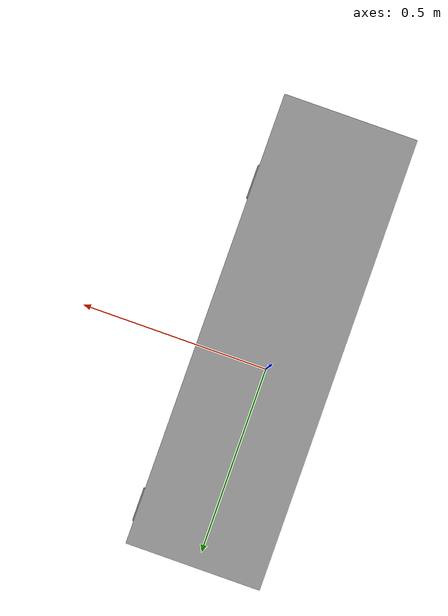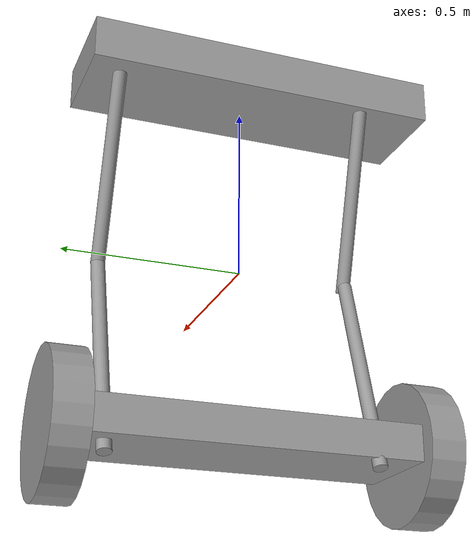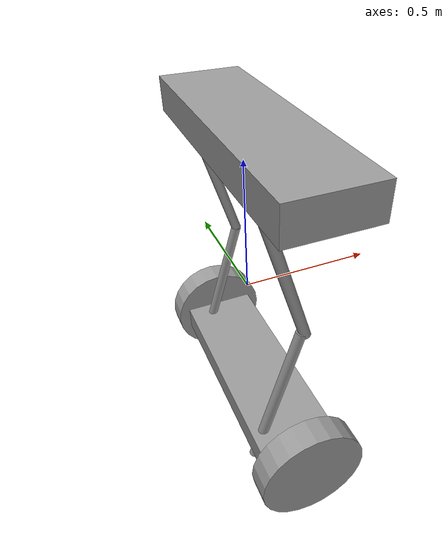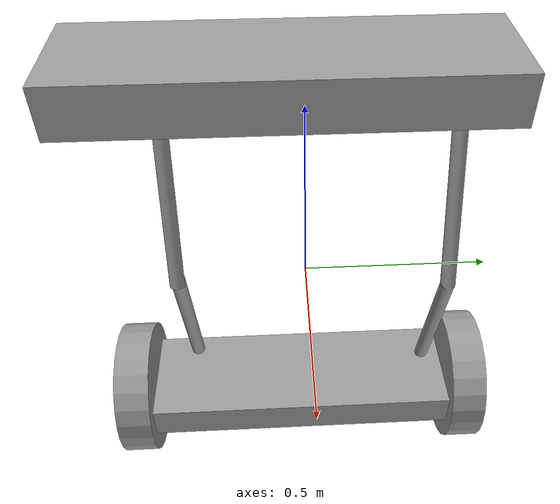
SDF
<?xml version='1.0'?>
<sdf version='1.6'>
  <model name='HumanoidRobot'>
    <static>true</static>
    <link name='link_1'>
      <inertial>
        <mass>1.23312</mass>
        <inertia>
          <ixx>0.106781</ixx>
          <ixy>0</ixy>
          <ixz>0</ixz>
          <iyy>0.0107742</iyy>
          <iyz>0</iyz>
          <izz>0.114503</izz>
        </inertia>
        <pose>0 0 0 0 -0 0</pose>
      </inertial>
      <pose>0.01979 -0.040473 0.587742 0 -0 0</pose>
      <visual name='visual'>
        <pose frame=''>0 0 0 0 -0 0</pose>
        <geometry>
          <box>
            <size>0.3 1.01207 0.121852</size>
          </box>
        </geometry>
        <material>
          <lighting>1</lighting>
          <script>
            <uri>file://media/materials/scripts/gazebo.material</uri>
            <name>Gazebo/Grey</name>
          </script>
          <shader type='pixel'>
            <normal_map>__default__</normal_map>
          </shader>
          <ambient>0.3 0.3 0.3 1</ambient>
          <diffuse>0.7 0.7 0.7 1</diffuse>
          <specular>0.01 0.01 0.01 1</specular>
          <emissive>0 0 0 1</emissive>
        </material>
        <transparency>0</transparency>
        <cast_shadows>1</cast_shadows>
      </visual>
      <collision name='collision'>
        <laser_retro>0</laser_retro>
        <max_contacts>10</max_contacts>
        <pose frame=''>0 0 0 0 -0 0</pose>
        <geometry>
          <box>
            <size>0.3 1.01207 0.121852</size>
          </box>
        </geometry>
        <surface>
          <friction>
            <ode>
              <mu>1</mu>
              <mu2>1</mu2>
              <fdir1>0 0 0</fdir1>
              <slip1>0</slip1>
              <slip2>0</slip2>
            </ode>
            <torsional>
              <coefficient>1</coefficient>
              <patch_radius>0</patch_radius>
              <surface_radius>0</surface_radius>
              <use_patch_radius>1</use_patch_radius>
              <ode>
                <slip>0</slip>
              </ode>
            </torsional>
          </friction>
          <bounce>
            <restitution_coefficient>0</restitution_coefficient>
            <threshold>1e+06</threshold>
          </bounce>
          <contact>
            <collide_without_contact>0</collide_without_contact>
            <collide_without_contact_bitmask>1</collide_without_contact_bitmask>
            <collide_bitmask>1</collide_bitmask>
            <ode>
              <soft_cfm>0</soft_cfm>
              <soft_erp>0.2</soft_erp>
              <kp>1e+13</kp>
              <kd>1</kd>
              <max_vel>0.01</max_vel>
              <min_depth>0</min_depth>
            </ode>
            <bullet>
              <split_impulse>1</split_impulse>
              <split_impulse_penetration_threshold>-0.01</split_impulse_penetration_threshold>
              <soft_cfm>0</soft_cfm>
              <soft_erp>0.2</soft_erp>
              <kp>1e+13</kp>
              <kd>1</kd>
            </bullet>
          </contact>
        </surface>
      </collision>
    </link>
    <link name='link_2'>
      <inertial>
        <mass>0.00130479</mass>
        <inertia>
          <ixx>4.197e-05</ixx>
          <ixy>0</ixy>
          <ixz>0</ixz>
          <iyy>4.197e-05</iyy>
          <iyz>0</iyz>
          <izz>3.5e-07</izz>
        </inertia>
        <pose frame=''>0 0 0 0 -0 0</pose>
      </inertial>
      <pose frame=''>-0.022447 -0.345824 0.300772 0 -0.3 0</pose>
      <gravity>1</gravity>
      <self_collide>0</self_collide>
      <kinematic>0</kinematic>
      <enable_wind>0</enable_wind>
      <visual name='visual'>
        <pose frame=''>0 0 0 0 -0 0</pose>
        <geometry>
          <cylinder>
            <radius>0.02</radius>
            <length>0.6</length>
          </cylinder>
        </geometry>
        <material>
          <lighting>1</lighting>
          <script>
            <uri>file://media/materials/scripts/gazebo.material</uri>
            <name>Gazebo/Grey</name>
          </script>
          <shader type='pixel'>
            <normal_map>__default__</normal_map>
          </shader>
          <ambient>0.3 0.3 0.3 1</ambient>
          <diffuse>0.7 0.7 0.7 1</diffuse>
          <specular>0.01 0.01 0.01 1</specular>
          <emissive>0 0 0 1</emissive>
        </material>
        <transparency>0</transparency>
        <cast_shadows>1</cast_shadows>
      </visual>
      <collision name='collision'>
        <laser_retro>0</laser_retro>
        <max_contacts>10</max_contacts>
        <pose frame=''>0 0 0 0 -0 0</pose>
        <geometry>
          <cylinder>
            <radius>0.02</radius>
            <length>0.6</length>
          </cylinder>
        </geometry>
        <surface>
          <friction>
            <ode>
              <mu>1</mu>
              <mu2>1</mu2>
              <fdir1>0 0 0</fdir1>
              <slip1>0</slip1>
              <slip2>0</slip2>
            </ode>
            <torsional>
              <coefficient>1</coefficient>
              <patch_radius>0</patch_radius>
              <surface_radius>0</surface_radius>
              <use_patch_radius>1</use_patch_radius>
              <ode>
                <slip>0</slip>
              </ode>
            </torsional>
          </friction>
          <bounce>
            <restitution_coefficient>0</restitution_coefficient>
            <threshold>1e+06</threshold>
          </bounce>
          <contact>
            <collide_without_contact>0</collide_without_contact>
            <collide_without_contact_bitmask>1</collide_without_contact_bitmask>
            <collide_bitmask>1</collide_bitmask>
            <ode>
              <soft_cfm>0</soft_cfm>
              <soft_erp>0.2</soft_erp>
              <kp>1e+13</kp>
              <kd>1</kd>
              <max_vel>0.01</max_vel>
              <min_depth>0</min_depth>
            </ode>
            <bullet>
              <split_impulse>1</split_impulse>
              <split_impulse_penetration_threshold>-0.01</split_impulse_penetration_threshold>
              <soft_cfm>0</soft_cfm>
              <soft_erp>0.2</soft_erp>
              <kp>1e+13</kp>
              <kd>1</kd>
            </bullet>
          </contact>
        </surface>
      </collision>
    </link>
    <link name='link_2_clone'>
      <inertial>
        <mass>0.00130479</mass>
        <inertia>
          <ixx>4.197e-05</ixx>
          <ixy>0</ixy>
          <ixz>0</ixz>
          <iyy>4.197e-05</iyy>
          <iyz>0</iyz>
          <izz>3.5e-07</izz>
        </inertia>
        <pose frame=''>0 0 0 0 -0 0</pose>
      </inertial>
      <pose frame=''>0.013434 0.375718 0.300772 0 -0.3 0</pose>
      <gravity>1</gravity>
      <self_collide>0</self_collide>
      <kinematic>0</kinematic>
      <enable_wind>0</enable_wind>
      <visual name='visual'>
        <pose frame=''>0 0 0 0 -0 0</pose>
        <geometry>
          <cylinder>
            <radius>0.02</radius>
            <length>0.6</length>
          </cylinder>
        </geometry>
        <material>
          <lighting>1</lighting>
          <script>
            <uri>file://media/materials/scripts/gazebo.material</uri>
            <name>Gazebo/Grey</name>
          </script>
          <shader type='pixel'>
            <normal_map>__default__</normal_map>
          </shader>
          <ambient>0.3 0.3 0.3 1</ambient>
          <diffuse>0.7 0.7 0.7 1</diffuse>
          <specular>0.01 0.01 0.01 1</specular>
          <emissive>0 0 0 1</emissive>
        </material>
        <transparency>0</transparency>
        <cast_shadows>1</cast_shadows>
      </visual>
      <collision name='collision'>
        <laser_retro>0</laser_retro>
        <max_contacts>10</max_contacts>
        <pose frame=''>0 0 0 0 -0 0</pose>
        <geometry>
          <cylinder>
            <radius>0.02</radius>
            <length>0.6</length>
          </cylinder>
        </geometry>
        <surface>
          <friction>
            <ode>
              <mu>1</mu>
              <mu2>1</mu2>
              <fdir1>0 0 0</fdir1>
              <slip1>0</slip1>
              <slip2>0</slip2>
            </ode>
            <torsional>
              <coefficient>1</coefficient>
              <patch_radius>0</patch_radius>
              <surface_radius>0</surface_radius>
              <use_patch_radius>1</use_patch_radius>
              <ode>
                <slip>0</slip>
              </ode>
            </torsional>
          </friction>
          <bounce>
            <restitution_coefficient>0</restitution_coefficient>
            <threshold>1e+06</threshold>
          </bounce>
          <contact>
            <collide_without_contact>0</collide_without_contact>
            <collide_without_contact_bitmask>1</collide_without_contact_bitmask>
            <collide_bitmask>1</collide_bitmask>
            <ode>
              <soft_cfm>0</soft_cfm>
              <soft_erp>0.2</soft_erp>
              <kp>1e+13</kp>
              <kd>1</kd>
              <max_vel>0.01</max_vel>
              <min_depth>0</min_depth>
            </ode>
            <bullet>
              <split_impulse>1</split_impulse>
              <split_impulse_penetration_threshold>-0.01</split_impulse_penetration_threshold>
              <soft_cfm>0</soft_cfm>
              <soft_erp>0.2</soft_erp>
              <kp>1e+13</kp>
              <kd>1</kd>
            </bullet>
          </contact>
        </surface>
      </collision>
    </link>
    <link name='link_2_clone_0'>
      <inertial>
        <mass>0.00130475</mass>
        <inertia>
          <ixx>3.927e-05</ixx>
          <ixy>0</ixy>
          <ixz>0</ixz>
          <iyy>3.927e-05</iyy>
          <iyz>0</iyz>
          <izz>2.6e-07</izz>
        </inertia>
        <pose frame=''>0 0 0 0 -0 0</pose>
      </inertial>
      <pose frame=''>-0.037314 -0.345824 -0.257269 0 0.3 0</pose>
      <gravity>1</gravity>
      <self_collide>0</self_collide>
      <kinematic>0</kinematic>
      <enable_wind>0</enable_wind>
      <visual name='visual'>
        <pose frame=''>0 0 0 0 -0 0</pose>
        <geometry>
          <cylinder>
            <radius>0.02</radius>
            <length>0.6</length>
          </cylinder>
        </geometry>
        <material>
          <lighting>1</lighting>
          <script>
            <uri>file://media/materials/scripts/gazebo.material</uri>
            <name>Gazebo/Grey</name>
          </script>
          <shader type='pixel'>
            <normal_map>__default__</normal_map>
          </shader>
          <ambient>0.3 0.3 0.3 1</ambient>
          <diffuse>0.7 0.7 0.7 1</diffuse>
          <specular>0.01 0.01 0.01 1</specular>
          <emissive>0 0 0 1</emissive>
        </material>
        <transparency>0</transparency>
        <cast_shadows>1</cast_shadows>
      </visual>
      <collision name='collision'>
        <laser_retro>0</laser_retro>
        <max_contacts>10</max_contacts>
        <pose frame=''>0 0 0 0 -0 0</pose>
        <geometry>
          <cylinder>
            <radius>0.02</radius>
            <length>0.6</length>
          </cylinder>
        </geometry>
        <surface>
          <friction>
            <ode>
              <mu>1</mu>
              <mu2>1</mu2>
              <fdir1>0 0 0</fdir1>
              <slip1>0</slip1>
              <slip2>0</slip2>
            </ode>
            <torsional>
              <coefficient>1</coefficient>
              <patch_radius>0</patch_radius>
              <surface_radius>0</surface_radius>
              <use_patch_radius>1</use_patch_radius>
              <ode>
                <slip>0</slip>
              </ode>
            </torsional>
          </friction>
          <bounce>
            <restitution_coefficient>0</restitution_coefficient>
            <threshold>1e+06</threshold>
          </bounce>
          <contact>
            <collide_without_contact>0</collide_without_contact>
            <collide_without_contact_bitmask>1</collide_without_contact_bitmask>
            <collide_bitmask>1</collide_bitmask>
            <ode>
              <soft_cfm>0</soft_cfm>
              <soft_erp>0.2</soft_erp>
              <kp>1e+13</kp>
              <kd>1</kd>
              <max_vel>0.01</max_vel>
              <min_depth>0</min_depth>
            </ode>
            <bullet>
              <split_impulse>1</split_impulse>
              <split_impulse_penetration_threshold>-0.01</split_impulse_penetration_threshold>
              <soft_cfm>0</soft_cfm>
              <soft_erp>0.2</soft_erp>
              <kp>1e+13</kp>
              <kd>1</kd>
            </bullet>
          </contact>
        </surface>
      </collision>
    </link>
    <link name='link_2_clone_clone'>
      <inertial>
        <mass>0.00130479</mass>
        <inertia>
          <ixx>4.197e-05</ixx>
          <ixy>0</ixy>
          <ixz>0</ixz>
          <iyy>4.197e-05</iyy>
          <iyz>0</iyz>
          <izz>3.5e-07</izz>
        </inertia>
        <pose frame=''>0 0 0 0 -0 0</pose>
      </inertial>
      <pose frame=''>0.013434 0.375718 -0.263839 0 0.3 0</pose>
      <gravity>1</gravity>
      <self_collide>0</self_collide>
      <kinematic>0</kinematic>
      <enable_wind>0</enable_wind>
      <visual name='visual'>
        <pose frame=''>0 0 0 0 -0 0</pose>
        <geometry>
          <cylinder>
            <radius>0.02</radius>
            <length>0.6</length>
          </cylinder>
        </geometry>
        <material>
          <lighting>1</lighting>
          <script>
            <uri>file://media/materials/scripts/gazebo.material</uri>
            <name>Gazebo/Grey</name>
          </script>
          <shader type='pixel'>
            <normal_map>__default__</normal_map>
          </shader>
          <ambient>0.3 0.3 0.3 1</ambient>
          <diffuse>0.7 0.7 0.7 1</diffuse>
          <specular>0.01 0.01 0.01 1</specular>
          <emissive>0 0 0 1</emissive>
        </material>
        <transparency>0</transparency>
        <cast_shadows>1</cast_shadows>
      </visual>
      <collision name='collision'>
        <laser_retro>0</laser_retro>
        <max_contacts>10</max_contacts>
        <pose frame=''>0 0 0 0 -0 0</pose>
        <geometry>
          <cylinder>
            <radius>0.02</radius>
            <length>0.6</length>
          </cylinder>
        </geometry>
        <surface>
          <friction>
            <ode>
              <mu>1</mu>
              <mu2>1</mu2>
              <fdir1>0 0 0</fdir1>
              <slip1>0</slip1>
              <slip2>0</slip2>
            </ode>
            <torsional>
              <coefficient>1</coefficient>
              <patch_radius>0</patch_radius>
              <surface_radius>0</surface_radius>
              <use_patch_radius>1</use_patch_radius>
              <ode>
                <slip>0</slip>
              </ode>
            </torsional>
          </friction>
          <bounce>
            <restitution_coefficient>0</restitution_coefficient>
            <threshold>1e+06</threshold>
          </bounce>
          <contact>
            <collide_without_contact>0</collide_without_contact>
            <collide_without_contact_bitmask>1</collide_without_contact_bitmask>
            <collide_bitmask>1</collide_bitmask>
            <ode>
              <soft_cfm>0</soft_cfm>
              <soft_erp>0.2</soft_erp>
              <kp>1e+13</kp>
              <kd>1</kd>
              <max_vel>0.01</max_vel>
              <min_depth>0</min_depth>
            </ode>
            <bullet>
              <split_impulse>1</split_impulse>
              <split_impulse_penetration_threshold>-0.01</split_impulse_penetration_threshold>
              <soft_cfm>0</soft_cfm>
              <soft_erp>0.2</soft_erp>
              <kp>1e+13</kp>
              <kd>1</kd>
            </bullet>
          </contact>
        </surface>
      </collision>
    </link>
    <model name='myrobot'>
      <link name='link'>
        <inertial>
          <mass>1</mass>
          <inertia>
            <ixx>0.166667</ixx>
            <ixy>0</ixy>
            <ixz>0</ixz>
            <iyy>0.166667</iyy>
            <iyz>0</iyz>
            <izz>0.166667</izz>
          </inertia>
          <pose frame=''>0 0 0 0 -0 0</pose>
        </inertial>
        <self_collide>0</self_collide>
        <enable_wind>0</enable_wind>
        <kinematic>0</kinematic>
        <pose frame=''>-0 -0 0.2 0 -0 0</pose>
        <gravity>1</gravity>
        <visual name='visual'>
          <geometry>
            <box>
              <size>0.3 1 0.1</size>
            </box>
          </geometry>
          <material>
            <script>
              <name>Gazebo/Grey</name>
              <uri>file://media/materials/scripts/gazebo.material</uri>
            </script>
            <shader type='pixel'>
              <normal_map>__default__</normal_map>
            </shader>
            <ambient>0.3 0.3 0.3 1</ambient>
            <diffuse>0.7 0.7 0.7 1</diffuse>
            <specular>0.01 0.01 0.01 1</specular>
            <emissive>0 0 0 1</emissive>
          </material>
          <pose frame=''>0 0 0 0 -0 0</pose>
          <transparency>0</transparency>
          <cast_shadows>1</cast_shadows>
        </visual>
        <collision name='collision'>
          <laser_retro>0</laser_retro>
          <max_contacts>10</max_contacts>
          <pose frame=''>0 0 0 0 -0 0</pose>
          <geometry>
            <box>
              <size>0.3 1 0.1</size>
            </box>
          </geometry>
          <surface>
            <friction>
              <ode>
                <mu>1</mu>
                <mu2>1</mu2>
                <fdir1>0 0 0</fdir1>
                <slip1>0</slip1>
                <slip2>0</slip2>
              </ode>
              <torsional>
                <coefficient>1</coefficient>
                <patch_radius>0</patch_radius>
                <surface_radius>0</surface_radius>
                <use_patch_radius>1</use_patch_radius>
                <ode>
                  <slip>0</slip>
                </ode>
              </torsional>
            </friction>
            <bounce>
              <restitution_coefficient>0</restitution_coefficient>
              <threshold>1e+06</threshold>
            </bounce>
            <contact>
              <collide_without_contact>0</collide_without_contact>
              <collide_without_contact_bitmask>1</collide_without_contact_bitmask>
              <collide_bitmask>1</collide_bitmask>
              <ode>
                <soft_cfm>0</soft_cfm>
                <soft_erp>0.2</soft_erp>
                <kp>1e+13</kp>
                <kd>1</kd>
                <max_vel>0.01</max_vel>
                <min_depth>0</min_depth>
              </ode>
              <bullet>
                <split_impulse>1</split_impulse>
                <split_impulse_penetration_threshold>-0.01</split_impulse_penetration_threshold>
                <soft_cfm>0</soft_cfm>
                <soft_erp>0.2</soft_erp>
                <kp>1e+13</kp>
                <kd>1</kd>
              </bullet>
            </contact>
          </surface>
        </collision>
      </link>
      <link name='link_0'>
        <inertial>
          <mass>1</mass>
          <inertia>
            <ixx>0.145833</ixx>
            <ixy>0</ixy>
            <ixz>0</ixz>
            <iyy>0.145833</iyy>
            <iyz>0</iyz>
            <izz>0.125</izz>
          </inertia>
          <pose frame=''>0 0 0 0 -0 0</pose>
        </inertial>
        <pose frame=''>-0 -0.5 0.2 1.5707 -0 0</pose>
        <gravity>1</gravity>
        <self_collide>0</self_collide>
        <kinematic>0</kinematic>
        <enable_wind>0</enable_wind>
        <visual name='visual'>
          <pose frame=''>0 0 0 0 -0 0</pose>
          <geometry>
            <cylinder>
              <radius>0.2</radius>
              <length>0.1</length>
            </cylinder>
          </geometry>
          <material>
            <lighting>1</lighting>
            <script>
              <uri>file://media/materials/scripts/gazebo.material</uri>
              <name>Gazebo/Grey</name>
            </script>
            <shader type='pixel'>
              <normal_map>__default__</normal_map>
            </shader>
            <ambient>0.3 0.3 0.3 1</ambient>
            <diffuse>0.7 0.7 0.7 1</diffuse>
            <specular>0.01 0.01 0.01 1</specular>
            <emissive>0 0 0 1</emissive>
          </material>
          <transparency>0</transparency>
          <cast_shadows>1</cast_shadows>
        </visual>
        <collision name='collision'>
          <laser_retro>0</laser_retro>
          <max_contacts>10</max_contacts>
          <pose frame=''>0 0 0 0 -0 0</pose>
          <geometry>
            <cylinder>
              <radius>0.2</radius>
              <length>0.1</length>
            </cylinder>
          </geometry>
          <surface>
            <friction>
              <ode>
                <mu>1</mu>
                <mu2>1</mu2>
                <fdir1>0 0 0</fdir1>
                <slip1>0</slip1>
                <slip2>0</slip2>
              </ode>
              <torsional>
                <coefficient>1</coefficient>
                <patch_radius>0</patch_radius>
                <surface_radius>0</surface_radius>
                <use_patch_radius>1</use_patch_radius>
                <ode>
                  <slip>0</slip>
                </ode>
              </torsional>
            </friction>
            <bounce>
              <restitution_coefficient>0</restitution_coefficient>
              <threshold>1e+06</threshold>
            </bounce>
            <contact>
              <collide_without_contact>0</collide_without_contact>
              <collide_without_contact_bitmask>1</collide_without_contact_bitmask>
              <collide_bitmask>1</collide_bitmask>
              <ode>
                <soft_cfm>0</soft_cfm>
                <soft_erp>0.2</soft_erp>
                <kp>1e+13</kp>
                <kd>1</kd>
                <max_vel>0.01</max_vel>
                <min_depth>0</min_depth>
              </ode>
              <bullet>
                <split_impulse>1</split_impulse>
                <split_impulse_penetration_threshold>-0.01</split_impulse_penetration_threshold>
                <soft_cfm>0</soft_cfm>
                <soft_erp>0.2</soft_erp>
                <kp>1e+13</kp>
                <kd>1</kd>
              </bullet>
            </contact>
          </surface>
        </collision>
      </link>
      <link name='link_0_clone'>
        <inertial>
          <mass>1</mass>
          <inertia>
            <ixx>0.145833</ixx>
            <ixy>0</ixy>
            <ixz>0</ixz>
            <iyy>0.145833</iyy>
            <iyz>0</iyz>
            <izz>0.125</izz>
          </inertia>
          <pose frame=''>0 0 0 0 -0 0</pose>
        </inertial>
        <pose frame=''>-0 0.5 0.2 1.5707 -0 0</pose>
        <gravity>1</gravity>
        <self_collide>0</self_collide>
        <kinematic>0</kinematic>
        <enable_wind>0</enable_wind>
        <visual name='visual'>
          <pose frame=''>0 0 0 0 -0 0</pose>
          <geometry>
            <cylinder>
              <radius>0.2</radius>
              <length>0.1</length>
            </cylinder>
          </geometry>
          <material>
            <lighting>1</lighting>
            <script>
              <uri>file://media/materials/scripts/gazebo.material</uri>
              <name>Gazebo/Grey</name>
            </script>
            <shader type='pixel'>
              <normal_map>__default__</normal_map>
            </shader>
            <ambient>0.3 0.3 0.3 1</ambient>
            <diffuse>0.7 0.7 0.7 1</diffuse>
            <specular>0.01 0.01 0.01 1</specular>
            <emissive>0 0 0 1</emissive>
          </material>
          <transparency>0</transparency>
          <cast_shadows>1</cast_shadows>
        </visual>
        <collision name='collision'>
          <laser_retro>0</laser_retro>
          <max_contacts>10</max_contacts>
          <pose frame=''>0 0 0 0 -0 0</pose>
          <geometry>
            <cylinder>
              <radius>0.2</radius>
              <length>0.1</length>
            </cylinder>
          </geometry>
          <surface>
            <friction>
              <ode>
                <mu>1</mu>
                <mu2>1</mu2>
                <fdir1>0 0 0</fdir1>
                <slip1>0</slip1>
                <slip2>0</slip2>
              </ode>
              <torsional>
                <coefficient>1</coefficient>
                <patch_radius>0</patch_radius>
                <surface_radius>0</surface_radius>
                <use_patch_radius>1</use_patch_radius>
                <ode>
                  <slip>0</slip>
                </ode>
              </torsional>
            </friction>
            <bounce>
              <restitution_coefficient>0</restitution_coefficient>
              <threshold>1e+06</threshold>
            </bounce>
            <contact>
              <collide_without_contact>0</collide_without_contact>
              <collide_without_contact_bitmask>1</collide_without_contact_bitmask>
              <collide_bitmask>1</collide_bitmask>
              <ode>
                <soft_cfm>0</soft_cfm>
                <soft_erp>0.2</soft_erp>
                <kp>1e+13</kp>
                <kd>1</kd>
                <max_vel>0.01</max_vel>
                <min_depth>0</min_depth>
              </ode>
              <bullet>
                <split_impulse>1</split_impulse>
                <split_impulse_penetration_threshold>-0.01</split_impulse_penetration_threshold>
                <soft_cfm>0</soft_cfm>
                <soft_erp>0.2</soft_erp>
                <kp>1e+13</kp>
                <kd>1</kd>
              </bullet>
            </contact>
          </surface>
        </collision>
      </link>
      <static>0</static>
      <allow_auto_disable>1</allow_auto_disable>
      <pose frame=''>0.013103 -0.019312 -0.668179 0 -0 0</pose>
    </model>
    <joint name='link_1_JOINT_2' type='fixed'>
      <parent>link_1</parent>
      <child>link_2</child>
      <pose frame=''>0 0 0 0 -0 0</pose>
      <physics>
        <ode>
          <limit>
            <cfm>0</cfm>
            <erp>0.2</erp>
          </limit>
          <suspension>
            <cfm>0</cfm>
            <erp>0.2</erp>
          </suspension>
        </ode>
      </physics>
    </joint>
    <joint name='link_1_JOINT_3' type='fixed'>
      <parent>link_1</parent>
      <child>link_2_clone</child>
      <pose frame=''>0 0 0 0 -0 0</pose>
      <physics>
        <ode>
          <limit>
            <cfm>0</cfm>
            <erp>0.2</erp>
          </limit>
          <suspension>
            <cfm>0</cfm>
            <erp>0.2</erp>
          </suspension>
        </ode>
      </physics>
    </joint>
    <joint name='link_2_JOINT_0' type='fixed'>
      <parent>link_2</parent>
      <child>link_2_clone_0</child>
      <pose frame=''>0 0 0 0 -0 0</pose>
      <physics>
        <ode>
          <limit>
            <cfm>0</cfm>
            <erp>0.2</erp>
          </limit>
          <suspension>
            <cfm>0</cfm>
            <erp>0.2</erp>
          </suspension>
        </ode>
      </physics>
    </joint>
    <joint name='link_2_clone_0_JOINT_4' type='fixed'>
      <parent>myrobot::link</parent>
      <child>link_2_clone_0</child>
      <pose frame=''>0 0 0 0 -0 0</pose>
      <physics>
        <ode>
          <limit>
            <cfm>0</cfm>
            <erp>0.2</erp>
          </limit>
          <suspension>
            <cfm>0</cfm>
            <erp>0.2</erp>
          </suspension>
        </ode>
      </physics>
    </joint>
    <joint name='link_2_clone_JOINT_1' type='fixed'>
      <parent>link_2_clone</parent>
      <child>link_2_clone_clone</child>
      <pose frame=''>0 0 0 0 -0 0</pose>
      <physics>
        <ode>
          <limit>
            <cfm>0</cfm>
            <erp>0.2</erp>
          </limit>
          <suspension>
            <cfm>0</cfm>
            <erp>0.2</erp>
          </suspension>
        </ode>
      </physics>
    </joint>
    <joint name='link_JOINT_5' type='fixed'>
      <parent>myrobot::link</parent>
      <child>link_2_clone_clone</child>
      <pose frame=''>0 0 0 0 -0 0</pose>
      <physics>
        <ode>
          <limit>
            <cfm>0</cfm>
            <erp>0.2</erp>
          </limit>
          <suspension>
            <cfm>0</cfm>
            <erp>0.2</erp>
          </suspension>
        </ode>
      </physics>
    </joint>
    <static>1</static>
    <allow_auto_disable>1</allow_auto_disable>
  </model>
</sdf>
